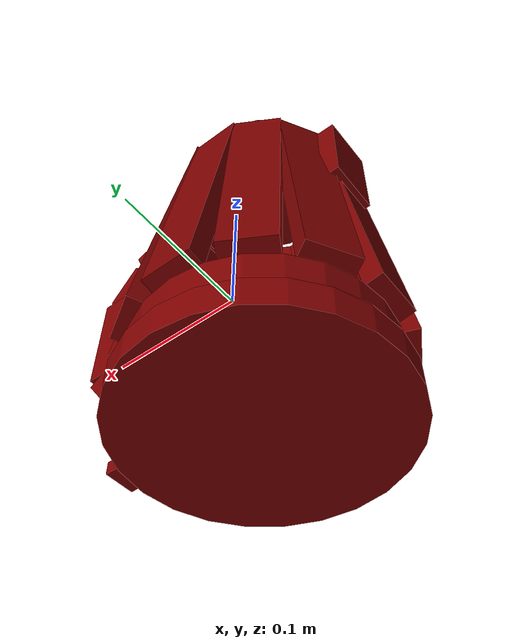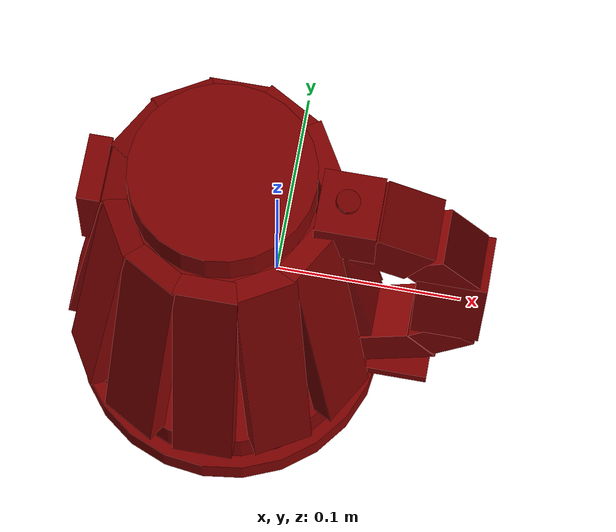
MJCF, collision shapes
<?xml version='1.0' encoding='UTF-8'?>
<mujoco model="model">
  <compiler angle="radian"/>
  <asset>
    <mesh file="visuals/Body001.obj" name="Body001_vis"/>
    <mesh file="visuals/Button001.obj" name="Button001_vis"/>
    <mesh file="visuals/Handle001.obj" name="Handle001_vis"/>
    <mesh file="visuals/Lever001.obj" name="Lever001_vis"/>
    <mesh file="visuals/Lid001.obj" name="Lid001_vis"/>
    <texture file="visuals/T_BC001.png" name="Body001_material" type="2d"/>
    <material name="Body001_material" rgba="1 1 1 1.0" texture="Body001_material" shininess="0.4472135901451111" specular="0.3103448502657381"/>
    <texture file="visuals/T_BC001.png" name="Handle001_material" type="2d"/>
    <material name="Handle001_material" rgba="1 1 1 1.0" texture="Handle001_material" shininess="0.4472135901451111" specular="0.3103448502657381"/>
    <texture file="visuals/T_BC001.png" name="Button001_material" type="2d"/>
    <material name="Button001_material" rgba="1 1 1 1.0" texture="Button001_material" shininess="0.4472135901451111" specular="0.3103448502657381"/>
    <texture file="visuals/T_BC001.png" name="Lever001_material" type="2d"/>
    <material name="Lever001_material" rgba="1 1 1 1.0" texture="Lever001_material" shininess="0.4472135901451111" specular="0.3103448502657381"/>
    <texture file="visuals/T_BC001.png" name="Lid001_material" type="2d"/>
    <material name="Lid001_material" rgba="1 1 1 1.0" texture="Lid001_material" shininess="0.4472135901451111" specular="0.3103448502657381"/>
  </asset>
  <default>
    <default class="visual">
      <geom conaffinity="0" contype="0" group="1" type="mesh"/>
    </default>
    <default class="collision">
      <geom group="0" rgba="0.5 0 0 0.5"/>
    </default>
    <default class="spawn">
      <geom group="0" rgba="1 1 1 0.5" contype="0" conaffinity="0"/>
      <site group="0" rgba="1 1 1 0.5"/>
    </default>
    <default class="region">
      <geom group="1" conaffinity="0" contype="0" rgba="0 1 0 0"/>
    </default>
  </default>
  <worldbody>
    <body>
      <body name="object">
        <geom mesh="Body001_vis" type="mesh" solimp="0.998 0.998 0.001" solref="0.001 1" density="100" friction="0.95 0.3 0.1" class="visual" material="Body001_material"/>
        <geom class="collision" type="cylinder" pos="-0.027123715728521347 0.0006314236670732498 -0.11536509543657303" size="0.0870601013302803 0.009835515171289444" quat="1.0 0.0 0.0 0.0"/>
        <body name="Handle001">
          <joint axis="0.0 0.0 1.0" pos="0.002556275576353073 -2.0451843738555908e-05 0.0014229975640773773" limited="true" name="Handle001_joint" range="0.0 0.1" type="slide" damping="1" frictionloss="1" armature=".01" stiffness="0.05"/>
          <geom mesh="Handle001_vis" type="mesh" solimp="0.998 0.998 0.001" solref="0.001 1" density="100" friction="0.95 0.3 0.1" class="visual" material="Handle001_material"/>
          <geom class="collision" type="cylinder" pos="-0.027123715728521347 0.0006314236670732498 -0.09106379747390747" size="0.08028148114681244 0.013414045795798302" quat="1.0 0.0 0.0 0.0"/>
          <geom class="collision" type="box" pos="-0.029719935730099678 0.0678422674536705 0.01245046965777874" size="0.01667201519012451 0.00625108927488327 0.08973126858472824" quat="0.9969461560249329 0.07809212803840637 0.0 0.0"/>
          <geom class="collision" type="box" pos="0.0044008586555719376 0.05956077575683594 0.012839394621551037" size="0.01667201519012451 0.00625108927488327 0.09012499451637268" quat="0.9629760384559631 0.0754312127828598 -0.020211733877658844 -0.25802865624427795"/>
          <geom class="collision" type="box" pos="0.02979552559554577 0.03535568341612816 0.01316695287823677" size="0.01667201519012451 0.006251089740544558 0.09045659750699997" quat="0.8633805513381958 0.06762980669736862 -0.03904610499739647 -0.49847328662872314"/>
          <geom class="collision" type="box" pos="0.04109631106257439 0.001721933949738741 0.00760232238098979" size="0.01667201519012451 0.006734172813594341 0.08474710583686829" quat="0.7049473524093628 0.055219486355781555 -0.055219486355781555 -0.7049474120140076"/>
          <geom class="collision" type="box" pos="0.031629934906959534 -0.032438334077596664 0.012338511645793915" size="0.01667201519012451 0.00625108927488327 0.08961792290210724" quat="0.49847304821014404 0.03904607146978378 -0.06762978434562683 -0.8633807301521301"/>
          <geom class="collision" type="box" pos="-0.08589640259742737 -0.03541430085897446 0.012407590635120869" size="0.01667201519012451 0.006251089740544558 0.08968786150217056" quat="0.4984731376171112 0.03904608264565468 0.06762977689504623 0.8633806705474854"/>
          <geom class="collision" type="box" pos="-0.060435935854911804 -0.059625107795000076 0.012359224259853363" size="0.01667201519012451 0.00625108927488327 0.08963889628648758" quat="0.25802868604660034 0.02021173946559429 0.075431227684021 0.9629760384559631"/>
          <geom class="collision" type="box" pos="-0.02627730555832386 -0.06785797327756882 0.012343070469796658" size="0.01667201519012451 0.00625108927488327 0.08962254226207733" quat="1.9411258733725845e-07 1.5205101178139557e-08 0.07809213548898697 0.9969461560249329"/>
          <geom class="collision" type="box" pos="0.007429031655192375 -0.057919204235076904 0.012246241793036461" size="0.01667201519012451 0.00625108927488327 0.0895245149731636" quat="0.25802868604660034 0.020211732015013695 -0.0754312053322792 -0.9629760384559631"/>
          <geom class="collision" type="box" pos="-0.09584486484527588 -0.0017207142664119601 0.012421312741935253" size="0.01667201519012451 0.00625108927488327 0.08970174938440323" quat="0.7049474120140076 0.05521947145462036 0.05521947145462036 0.7049473524093628"/>
          <geom class="collision" type="box" pos="-0.08756893873214722 0.03240600973367691 0.012764760293066502" size="0.01667201519012451 0.006251089740544558 0.09004943817853928" quat="0.8633806705474854 0.06762980669736862 0.03904609754681587 0.49847307801246643"/>
          <geom class="collision" type="box" pos="-0.06337998807430267 0.05784034729003906 0.012832971289753914" size="0.01667201519012451 0.006251089740544558 0.09011849015951157" quat="0.9629760384559631 0.07543117552995682 0.0202117171138525 0.2580285668373108"/>
          <geom class="collision" type="box" pos="0.09487435221672058 -0.0006461533484980464 0.021886680275201797" size="0.018629450350999832 0.015418626368045807 0.038655154407024384" quat="1.0 0.0 0.0 0.0"/>
          <geom class="collision" type="box" pos="0.06437619775533676 -0.0006461533484980464 -0.05335995554924011" size="0.015751056373119354 0.015418626368045807 0.022757533937692642" quat="0.878239095211029 0.0 0.4782218337059021 0.0"/>
          <geom class="collision" type="box" pos="0.062314487993717194 0.00021466927137225866 0.08514516055583954" size="0.018561823293566704 0.016870688647031784 0.016103072091937065" quat="0.8356542587280273 0.0 -0.5492557883262634 0.0"/>
          <geom class="collision" type="box" pos="0.09111899137496948 -0.0006081165629439056 -0.02947823703289032" size="0.01297727506607771 0.015142733231186867 0.017246974632143974" quat="0.9485732316970825 0.0 0.31655770540237427 0.0"/>
          <geom class="collision" type="box" pos="0.08661127835512161 -0.0006081165629439056 0.06763394176959991" size="0.015279310755431652 0.015142733231186867 0.017246974632143974" quat="0.9485732316970825 0.0 -0.31655770540237427 0.0"/>
          <geom class="collision" type="box" pos="0.03746698051691055 -1.5689176507294178e-05 0.09416995942592621" size="0.016039220616221428 0.01697361469268799 0.017141206189990044" quat="1.0 0.0 0.0 0.0"/>
          <geom class="collision" type="box" pos="-0.09690244495868683 0.005997326225042343 0.05929330736398697" size="0.006280609406530857 0.018092377111315727 0.027771886438131332" quat="1.0 0.0 0.0 0.0"/>
          <body name="Button001">
            <joint axis="-0.1648770272731781 0.0 -0.9863141775131226" pos="0.035936906933784485 0.0 0.11288760602474213" limited="true" name="Button001_joint" range="0.0 0.0015" type="slide" damping="1" frictionloss="1" armature=".01" stiffness="0.05" springref="-0.1"/>
            <geom mesh="Button001_vis" type="mesh" solimp="0.998 0.998 0.001" solref="0.001 1" density="100" friction="0.95 0.3 0.1" class="visual" material="Button001_material"/>
            <geom class="collision" type="cylinder" pos="0.03621174022555351 0.0 0.1140049546957016" size="0.0062545607797801495 0.0012471199734136462" quat="0.9963867664337158 0.0 0.08493166416883469 0.0"/>
          </body>
          <body name="Lever001">
            <joint axis="0.0 1.0 -1.6292067073209182e-07" pos="0.04427003115415573 -0.005025052931159735 -0.09788975119590759" limited="true" name="Lever001_joint" range="-0.17453292519943295 0.17453292519943295" type="hinge" damping="1" frictionloss="1" armature=".01" stiffness="1"/>
            <geom mesh="Lever001_vis" type="mesh" solimp="0.998 0.998 0.001" solref="0.001 1" density="100" friction="0.95 0.3 0.1" class="visual" material="Lever001_material"/>
            <geom class="collision" type="box" pos="0.07150208950042725 -0.005038935225456953 -0.09745471179485321" size="0.01746952347457409 0.011046938598155975 0.0044119711965322495" quat="1.0 0.0 0.0 0.0"/>
          </body>
          <body name="Lid001">
            <joint axis="0.0 1.0 0.0" pos="0.013305006548762321 0.00018151476979255676 0.11327150464057922" limited="true" name="Lid001_joint" range="0.0 1.5707963267948966" type="hinge" damping="1" frictionloss="1" armature=".01" stiffness="0.05"/>
            <geom mesh="Lid001_vis" type="mesh" solimp="0.998 0.998 0.001" solref="0.001 1" density="100" friction="0.95 0.3 0.1" class="visual" material="Lid001_material"/>
            <geom class="collision" type="cylinder" pos="-0.02811012789607048 -3.936994471587241e-05 0.11419539153575897" size="0.04846454784274101 0.01173013262450695" quat="1.0 0.0 0.0 0.0"/>
          </body>
        </body>
        <geom class="region" name="reg_main" type="box" pos="-1.862645149230957e-09 -7.450580596923828e-09 0.0" size="0.11280138045549393 0.0848034992814064 0.12500250339508057"/>
      </body>
    </body>
  </worldbody>
  <actuator>
    <motor name="Handle001_joint_actuator" joint="Handle001_joint" gear="10"/>
    <motor name="Button001_joint_actuator" joint="Button001_joint" gear="0.5"/>
    <motor name="Lever001_joint_actuator" joint="Lever001_joint" gear="0.5"/>
    <motor name="Lid001_joint_actuator" joint="Lid001_joint" gear="0.5"/>
  </actuator>
</mujoco>
